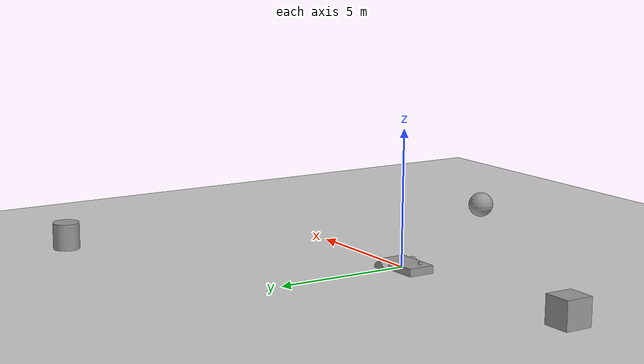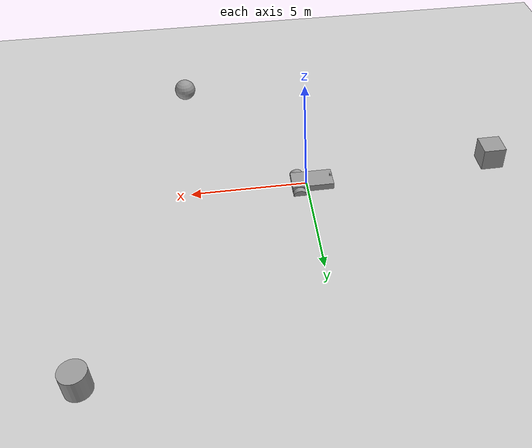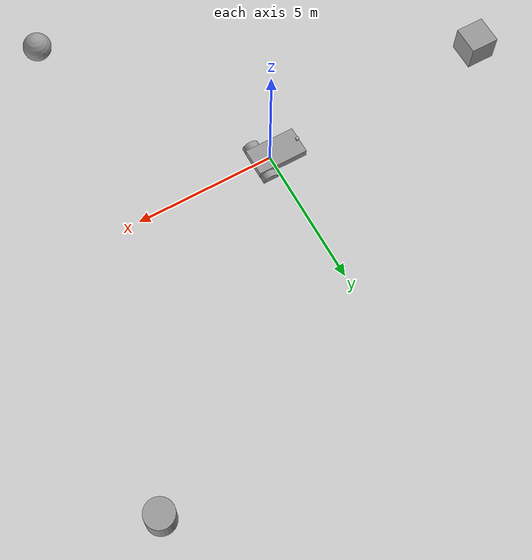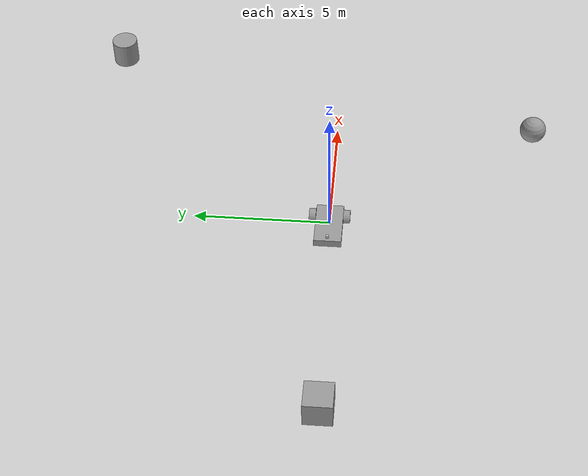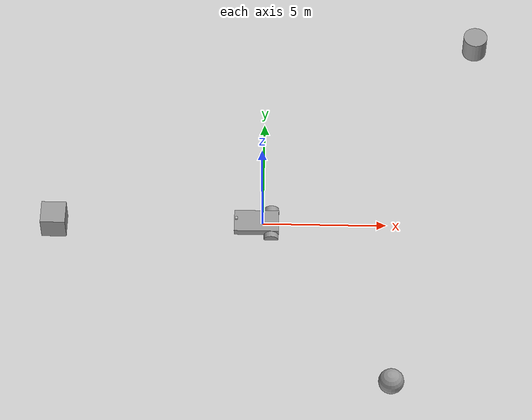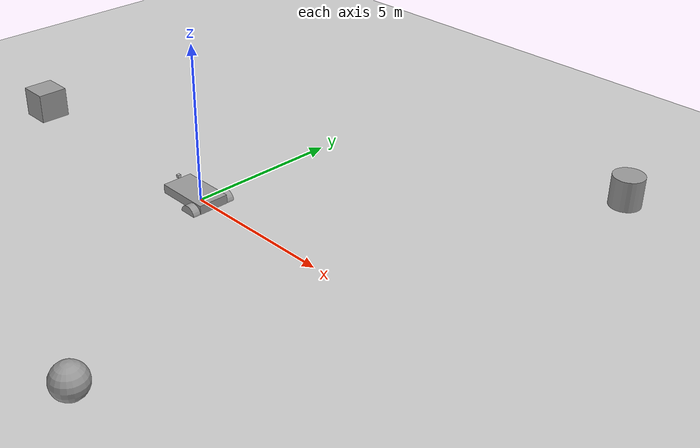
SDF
<?xml version="1.0" ?>
<sdf version="1.5">
  <world name="default">
    <!-- A global light source -->
    <include>
      <uri>model://sun</uri>
    </include>
    <!-- A ground plane -->
    <include>
      <uri>model://ground_plane</uri>
    </include>

    <!-- A testing model that includes the differential_drive_robot model -->
    <model name="differential_drive_robot">
      <include>
        <uri>differential_drive_robot</uri>
      </include>

      <include >
        <uri>panoramic_camera</uri>
      </include>
      <!-- Attach the plugin to this model -->
      <plugin name="differential_drive_control" filename="libtank_plugin.so">
        <velocity>0</velocity>
      </plugin>
    </model>
    <gravity>0 0 -9.8</gravity>
    <magnetic_field>6e-06 2.3e-05 -4.2e-05</magnetic_field>
    <atmosphere type='adiabatic'/>
    <physics name='default_physics' default='0' type='ode'>
      <max_step_size>0.001</max_step_size>
      <real_time_factor>1</real_time_factor>
      <real_time_update_rate>1000</real_time_update_rate>
    </physics>
    <scene>
      <ambient>0.4 0.4 0.4 1</ambient>
      <background>0.7 0.7 0.7 1</background>
      <shadows>1</shadows>
    </scene>
    <wind/>
    <spherical_coordinates>
      <surface_model>EARTH_WGS84</surface_model>
      <latitude_deg>0</latitude_deg>
      <longitude_deg>0</longitude_deg>
      <elevation>0</elevation>
      <heading_deg>0</heading_deg>
    </spherical_coordinates>
    <model name='unit_box'>
      <pose frame=''>-8.43617 -0.234612 0.5 0 -0 0</pose>
      <link name='link'>
        <inertial>
          <mass>1</mass>
          <inertia>
            <ixx>0.166667</ixx>
            <ixy>0</ixy>
            <ixz>0</ixz>
            <iyy>0.166667</iyy>
            <iyz>0</iyz>
            <izz>0.166667</izz>
          </inertia>
          <pose frame=''>0 0 0 0 -0 0</pose>
        </inertial>
        <collision name='collision'>
          <geometry>
            <box>
              <size>1 1 1</size>
            </box>
          </geometry>
          <max_contacts>10</max_contacts>
          <surface>
            <contact>
              <ode/>
            </contact>
            <bounce/>
            <friction>
              <torsional>
                <ode/>
              </torsional>
              <ode/>
            </friction>
          </surface>
        </collision>
        <visual name='visual'>
          <geometry>
            <box>
              <size>1 1 1</size>
            </box>
          </geometry>
          <material>
            <script>
              <name>Gazebo/Grey</name>
              <uri>file://media/materials/scripts/gazebo.material</uri>
            </script>
          </material>
        </visual>
        <self_collide>0</self_collide>
        <enable_wind>0</enable_wind>
        <kinematic>0</kinematic>
      </link>
    </model>
    <model name='unit_cylinder'>
      <pose frame=''>8.86747 9.11965 0.5 0 -0 0</pose>
      <link name='link'>
        <inertial>
          <mass>1</mass>
          <inertia>
            <ixx>0.145833</ixx>
            <ixy>0</ixy>
            <ixz>0</ixz>
            <iyy>0.145833</iyy>
            <iyz>0</iyz>
            <izz>0.125</izz>
          </inertia>
          <pose frame=''>0 0 0 0 -0 0</pose>
        </inertial>
        <collision name='collision'>
          <geometry>
            <cylinder>
              <radius>0.5</radius>
              <length>1</length>
            </cylinder>
          </geometry>
          <max_contacts>10</max_contacts>
          <surface>
            <contact>
              <ode/>
            </contact>
            <bounce/>
            <friction>
              <torsional>
                <ode/>
              </torsional>
              <ode/>
            </friction>
          </surface>
        </collision>
        <visual name='visual'>
          <geometry>
            <cylinder>
              <radius>0.5</radius>
              <length>1</length>
            </cylinder>
          </geometry>
          <material>
            <script>
              <name>Gazebo/Grey</name>
              <uri>file://media/materials/scripts/gazebo.material</uri>
            </script>
          </material>
        </visual>
        <self_collide>0</self_collide>
        <enable_wind>0</enable_wind>
        <kinematic>0</kinematic>
      </link>
    </model>
    <model name='unit_sphere'>
      <pose frame=''>5.10408 -7.61756 0.5 0 -0 0</pose>
      <link name='link'>
        <inertial>
          <mass>1</mass>
          <inertia>
            <ixx>0.1</ixx>
            <ixy>0</ixy>
            <ixz>0</ixz>
            <iyy>0.1</iyy>
            <iyz>0</iyz>
            <izz>0.1</izz>
          </inertia>
          <pose frame=''>0 0 0 0 -0 0</pose>
        </inertial>
        <collision name='collision'>
          <geometry>
            <sphere>
              <radius>0.5</radius>
            </sphere>
          </geometry>
          <max_contacts>10</max_contacts>
          <surface>
            <contact>
              <ode/>
            </contact>
            <bounce/>
            <friction>
              <torsional>
                <ode/>
              </torsional>
              <ode/>
            </friction>
          </surface>
        </collision>
        <visual name='visual'>
          <geometry>
            <sphere>
              <radius>0.5</radius>
            </sphere>
          </geometry>
          <material>
            <script>
              <name>Gazebo/Grey</name>
              <uri>file://media/materials/scripts/gazebo.material</uri>
            </script>
          </material>
        </visual>
        <self_collide>0</self_collide>
        <enable_wind>0</enable_wind>
        <kinematic>0</kinematic>
      </link>
    </model>
  </world>
</sdf>

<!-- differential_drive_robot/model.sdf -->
<sdf version='1.6'>
  <model name='differential_drive_robot'>
    <link name='link_0'>
      <inertial>
        <mass>0.811541</mass>
        <inertia>
          <ixx>0.0813018</ixx>
          <ixy>0</ixy>
          <ixz>0</ixz>
          <iyy>0.233992</iyy>
          <iyz>0</iyz>
          <izz>0.287947</izz>
        </inertia>
        <pose frame=''>0 0 0 0 -0 0</pose>
      </inertial>
      <pose frame=''>-0.252875 -0.007186 0.035183 0 -0 0</pose>
      <gravity>1</gravity>
      <self_collide>0</self_collide>
      <kinematic>0</kinematic>
      <enable_wind>0</enable_wind>
      <visual name='visual'>
        <pose frame=''>0 0 0 0 -0 0</pose>
        <geometry>
          <box>
            <size>1.80493 1 0.44965</size>
          </box>
        </geometry>
        <material>
          <lighting>1</lighting>
          <script>
            <uri>file://media/materials/scripts/gazebo.material</uri>
            <name>Gazebo/Grey</name>
          </script>
          <shader type='pixel'>
            <normal_map>__default__</normal_map>
          </shader>
          <ambient>0.3 0.3 0.3 1</ambient>
          <diffuse>0.7 0.7 0.7 1</diffuse>
          <specular>0.01 0.01 0.01 1</specular>
          <emissive>0 0 0 1</emissive>
        </material>
        <transparency>0</transparency>
        <cast_shadows>1</cast_shadows>
      </visual>
      <collision name='collision'>
        <laser_retro>0</laser_retro>
        <max_contacts>10</max_contacts>
        <pose frame=''>0 0 0 0 -0 0</pose>
        <geometry>
          <box>
            <size>1.80493 1 0.44965</size>
          </box>
        </geometry>
        <surface>
          <friction>
            <ode>
              <mu>1</mu>
              <mu2>1</mu2>
              <fdir1>0 0 0</fdir1>
              <slip1>0</slip1>
              <slip2>0</slip2>
            </ode>
            <torsional>
              <coefficient>1</coefficient>
              <patch_radius>0</patch_radius>
              <surface_radius>0</surface_radius>
              <use_patch_radius>1</use_patch_radius>
              <ode>
                <slip>0</slip>
              </ode>
            </torsional>
          </friction>
          <bounce>
            <restitution_coefficient>0</restitution_coefficient>
            <threshold>1e+06</threshold>
          </bounce>
          <contact>
            <collide_without_contact>0</collide_without_contact>
            <collide_without_contact_bitmask>1</collide_without_contact_bitmask>
            <collide_bitmask>1</collide_bitmask>
            <ode>
              <soft_cfm>0</soft_cfm>
              <soft_erp>0.2</soft_erp>
              <kp>1e+13</kp>
              <kd>1</kd>
              <max_vel>0.01</max_vel>
              <min_depth>0</min_depth>
            </ode>
            <bullet>
              <split_impulse>1</split_impulse>
              <split_impulse_penetration_threshold>-0.01</split_impulse_penetration_threshold>
              <soft_cfm>0</soft_cfm>
              <soft_erp>0.2</soft_erp>
              <kp>1e+13</kp>
              <kd>1</kd>
            </bullet>
          </contact>
        </surface>
      </collision>
    </link>
    <link name='link_1'>
      <inertial>
        <mass>1</mass>
        <inertia>
          <ixx>0.145833</ixx>
          <ixy>0</ixy>
          <ixz>0</ixz>
          <iyy>0.145833</iyy>
          <iyz>0</iyz>
          <izz>0.125</izz>
        </inertia>
        <pose frame=''>0 0 0 0 -0 0</pose>
      </inertial>
      <pose frame=''>0.349591 0.632843 -0.064817 1.5707 -0 0</pose>
      <gravity>1</gravity>
      <self_collide>0</self_collide>
      <kinematic>0</kinematic>
      <enable_wind>0</enable_wind>
      <visual name='visual'>
        <pose frame=''>0 0 0 0 -0 0</pose>
        <geometry>
          <cylinder>
            <radius>0.3</radius>
            <length>0.25</length>
          </cylinder>
        </geometry>
        <material>
          <lighting>1</lighting>
          <script>
            <uri>file://media/materials/scripts/gazebo.material</uri>
            <name>Gazebo/Grey</name>
          </script>
          <shader type='pixel'>
            <normal_map>__default__</normal_map>
          </shader>
          <ambient>0.3 0.3 0.3 1</ambient>
          <diffuse>0.7 0.7 0.7 1</diffuse>
          <specular>0.01 0.01 0.01 1</specular>
          <emissive>0 0 0 1</emissive>
        </material>
        <transparency>0</transparency>
        <cast_shadows>1</cast_shadows>
      </visual>
      <collision name='collision'>
        <laser_retro>0</laser_retro>
        <max_contacts>10</max_contacts>
        <pose frame=''>0 0 0 0 -0 0</pose>
        <geometry>
          <cylinder>
            <radius>0.3</radius>
            <length>0.25</length>
          </cylinder>
        </geometry>
        <surface>
          <friction>
            <ode>
              <mu>1</mu>
              <mu2>1</mu2>
              <fdir1>0 0 0</fdir1>
              <slip1>0</slip1>
              <slip2>0</slip2>
            </ode>
            <torsional>
              <coefficient>1</coefficient>
              <patch_radius>0</patch_radius>
              <surface_radius>0</surface_radius>
              <use_patch_radius>1</use_patch_radius>
              <ode>
                <slip>0</slip>
              </ode>
            </torsional>
          </friction>
          <bounce>
            <restitution_coefficient>0</restitution_coefficient>
            <threshold>1e+06</threshold>
          </bounce>
          <contact>
            <collide_without_contact>0</collide_without_contact>
            <collide_without_contact_bitmask>1</collide_without_contact_bitmask>
            <collide_bitmask>1</collide_bitmask>
            <ode>
              <soft_cfm>0</soft_cfm>
              <soft_erp>0.2</soft_erp>
              <kp>1e+13</kp>
              <kd>1</kd>
              <max_vel>0.01</max_vel>
              <min_depth>0</min_depth>
            </ode>
            <bullet>
              <split_impulse>1</split_impulse>
              <split_impulse_penetration_threshold>-0.01</split_impulse_penetration_threshold>
              <soft_cfm>0</soft_cfm>
              <soft_erp>0.2</soft_erp>
              <kp>1e+13</kp>
              <kd>1</kd>
            </bullet>
          </contact>
        </surface>
      </collision>
    </link>
    <link name='link_1_clone'>
      <inertial>
        <mass>1</mass>
        <inertia>
          <ixx>0.145833</ixx>
          <ixy>0</ixy>
          <ixz>0</ixz>
          <iyy>0.145833</iyy>
          <iyz>0</iyz>
          <izz>0.125</izz>
        </inertia>
        <pose frame=''>0 0 0 0 -0 0</pose>
      </inertial>
      <pose frame=''>0.349591 -0.632215 -0.064817 1.5707 -0 0</pose>
      <gravity>1</gravity>
      <self_collide>0</self_collide>
      <kinematic>0</kinematic>
      <enable_wind>0</enable_wind>
      <visual name='visual'>
        <pose frame=''>0 0 0 0 -0 0</pose>
        <geometry>
          <cylinder>
            <radius>0.3</radius>
            <length>0.25</length>
          </cylinder>
        </geometry>
        <material>
          <lighting>1</lighting>
          <script>
            <uri>file://media/materials/scripts/gazebo.material</uri>
            <name>Gazebo/Grey</name>
          </script>
          <shader type='pixel'>
            <normal_map>__default__</normal_map>
          </shader>
          <ambient>0.3 0.3 0.3 1</ambient>
          <diffuse>0.7 0.7 0.7 1</diffuse>
          <specular>0.01 0.01 0.01 1</specular>
          <emissive>0 0 0 1</emissive>
        </material>
        <transparency>0</transparency>
        <cast_shadows>1</cast_shadows>
      </visual>
      <collision name='collision'>
        <laser_retro>0</laser_retro>
        <max_contacts>10</max_contacts>
        <pose frame=''>0 0 0 0 -0 0</pose>
        <geometry>
          <cylinder>
            <radius>0.3</radius>
            <length>0.25</length>
          </cylinder>
        </geometry>
        <surface>
          <friction>
            <ode>
              <mu>1</mu>
              <mu2>1</mu2>
              <fdir1>0 0 0</fdir1>
              <slip1>0</slip1>
              <slip2>0</slip2>
            </ode>
            <torsional>
              <coefficient>1</coefficient>
              <patch_radius>0</patch_radius>
              <surface_radius>0</surface_radius>
              <use_patch_radius>1</use_patch_radius>
              <ode>
                <slip>0</slip>
              </ode>
            </torsional>
          </friction>
          <bounce>
            <restitution_coefficient>0</restitution_coefficient>
            <threshold>1e+06</threshold>
          </bounce>
          <contact>
            <collide_without_contact>0</collide_without_contact>
            <collide_without_contact_bitmask>1</collide_without_contact_bitmask>
            <collide_bitmask>1</collide_bitmask>
            <ode>
              <soft_cfm>0</soft_cfm>
              <soft_erp>0.2</soft_erp>
              <kp>1e+13</kp>
              <kd>1</kd>
              <max_vel>0.01</max_vel>
              <min_depth>0</min_depth>
            </ode>
            <bullet>
              <split_impulse>1</split_impulse>
              <split_impulse_penetration_threshold>-0.01</split_impulse_penetration_threshold>
              <soft_cfm>0</soft_cfm>
              <soft_erp>0.2</soft_erp>
              <kp>1e+13</kp>
              <kd>1</kd>
            </bullet>
          </contact>
        </surface>
      </collision>
    </link>
    <link name='link_2'>
      <inertial>
        <mass>1</mass>
        <inertia>
          <ixx>0.1</ixx>
          <ixy>0</ixy>
          <ixz>0</ixz>
          <iyy>0.1</iyy>
          <iyz>0</iyz>
          <izz>0.1</izz>
        </inertia>
        <pose frame=''>0 0 0 0 -0 0</pose>
      </inertial>
      <pose frame=''>-0.955341 -0.007186 -0.164817 0 -0 0</pose>
      <gravity>1</gravity>
      <self_collide>0</self_collide>
      <kinematic>0</kinematic>
      <enable_wind>0</enable_wind>
      <visual name='visual'>
        <pose frame=''>0 0 0 0 -0 0</pose>
        <geometry>
          <sphere>
            <radius>0.2</radius>
          </sphere>
        </geometry>
        <material>
          <lighting>1</lighting>
          <script>
            <uri>file://media/materials/scripts/gazebo.material</uri>
            <name>Gazebo/Grey</name>
          </script>
          <shader type='pixel'>
            <normal_map>__default__</normal_map>
          </shader>
          <ambient>0.3 0.3 0.3 1</ambient>
          <diffuse>0.7 0.7 0.7 1</diffuse>
          <specular>0.01 0.01 0.01 1</specular>
          <emissive>0 0 0 1</emissive>
        </material>
        <transparency>0</transparency>
        <cast_shadows>1</cast_shadows>
      </visual>
      <collision name='collision'>
        <laser_retro>0</laser_retro>
        <max_contacts>10</max_contacts>
        <pose frame=''>0 0 0 0 -0 0</pose>
        <geometry>
          <sphere>
            <radius>0.2</radius>
          </sphere>
        </geometry>
        <surface>
          <friction>
            <ode>
              <mu>1</mu>
              <mu2>1</mu2>
              <fdir1>0 0 0</fdir1>
              <slip1>0</slip1>
              <slip2>0</slip2>
            </ode>
            <torsional>
              <coefficient>1</coefficient>
              <patch_radius>0</patch_radius>
              <surface_radius>0</surface_radius>
              <use_patch_radius>1</use_patch_radius>
              <ode>
                <slip>0</slip>
              </ode>
            </torsional>
          </friction>
          <bounce>
            <restitution_coefficient>0</restitution_coefficient>
            <threshold>1e+06</threshold>
          </bounce>
          <contact>
            <collide_without_contact>0</collide_without_contact>
            <collide_without_contact_bitmask>1</collide_without_contact_bitmask>
            <collide_bitmask>1</collide_bitmask>
            <ode>
              <soft_cfm>0</soft_cfm>
              <soft_erp>0.2</soft_erp>
              <kp>1e+13</kp>
              <kd>1</kd>
              <max_vel>0.01</max_vel>
              <min_depth>0</min_depth>
            </ode>
            <bullet>
              <split_impulse>1</split_impulse>
              <split_impulse_penetration_threshold>-0.01</split_impulse_penetration_threshold>
              <soft_cfm>0</soft_cfm>
              <soft_erp>0.2</soft_erp>
              <kp>1e+13</kp>
              <kd>1</kd>
            </bullet>
          </contact>
        </surface>
      </collision>
    </link>

    <joint name='link_0_JOINT_0' type='revolute'>
      <parent>link_0</parent>
      <child>link_1</child>
      <pose frame=''>0 0 0 0 -0 0</pose>
      <axis>
        <xyz>0 0 1</xyz>
        <use_parent_model_frame>0</use_parent_model_frame>
        <limit>
          <lower>-1.79769e+308</lower>
          <upper>1.79769e+308</upper>
          <effort>-1</effort>
          <velocity>-1</velocity>
        </limit>
        <dynamics>
          <spring_reference>0</spring_reference>
          <spring_stiffness>0</spring_stiffness>
          <damping>0</damping>
          <friction>0</friction>
        </dynamics>
      </axis>
      <physics>
        <ode>
          <limit>
            <cfm>0</cfm>
            <erp>0.2</erp>
          </limit>
          <suspension>
            <cfm>0</cfm>
            <erp>0.2</erp>
          </suspension>
        </ode>
      </physics>
    </joint>
    <joint name='link_0_JOINT_1' type='revolute'>
      <parent>link_0</parent>
      <child>link_1_clone</child>
      <pose frame=''>0 0 0 0 -0 0</pose>
      <axis>
        <xyz>0 0 -1</xyz>
        <use_parent_model_frame>0</use_parent_model_frame>
        <limit>
          <lower>-1.79769e+308</lower>
          <upper>1.79769e+308</upper>
          <effort>-1</effort>
          <velocity>-1</velocity>
        </limit>
        <dynamics>
          <spring_reference>0</spring_reference>
          <spring_stiffness>0</spring_stiffness>
          <damping>0</damping>
          <friction>0</friction>
        </dynamics>
      </axis>
      <physics>
        <ode>
          <limit>
            <cfm>0</cfm>
            <erp>0.2</erp>
          </limit>
          <suspension>
            <cfm>0</cfm>
            <erp>0.2</erp>
          </suspension>
        </ode>
      </physics>
    </joint>
    <joint name='link_0_JOINT_2' type='ball'>
      <parent>link_0</parent>
      <child>link_2</child>
      <pose frame=''>0 0 0 0 -0 0</pose>
      <physics>
        <ode>
          <limit>
            <cfm>0</cfm>
            <erp>0.2</erp>
          </limit>
          <suspension>
            <cfm>0</cfm>
            <erp>0.2</erp>
          </suspension>
        </ode>
      </physics>
    </joint>
    <static>0</static>
    <allow_auto_disable>1</allow_auto_disable>
  </model>
</sdf>

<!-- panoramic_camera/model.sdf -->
<sdf version='1.6'>
  <model name="panoramic_camera">
     <pose frame=''>-1.07303 0 0.4 0 -1.5707 0</pose>
    <link name="link">
      <inertial>
        <mass>0.1</mass>
        <pose frame=''>0 0 0 0 -0 0</pose>
        <inertia>
          <ixx>0.0001</ixx>
          <ixy>0</ixy>
          <ixz>0</ixz>
          <iyy>0.0001</iyy>
          <iyz>0</iyz>
          <izz>0.0001</izz>
        </inertia>
      </inertial>
      <collision name="collision">
        <geometry>
          <box>
            <size>0.1 0.1 0.1</size>
          </box>
        </geometry>
      </collision>
      <visual name="visual">
        <geometry>
          <box>
            <size>0.1 0.1 0.1</size>
          </box>
        </geometry>
      </visual>
      <sensor name="camera" type="wideanglecamera">
        <camera>
          <horizontal_fov>6.2831</horizontal_fov>
          <image>
            <width>640</width>
            <height>640</height>
            <format>B8G8R8</format>
          </image>
          <clip>
            <near>0.1</near>
            <far>100</far>
          </clip>
          <lens>
            <type>custom</type>
            <scale_to_hfov>false</scale_to_hfov>
            <cutoff_angle>6.2831</cutoff_angle>
            <env_texture_size>512</env_texture_size>
            <custom_function>
            <c1>1.05</c1>
            <c2>4</c2>
            <f>2</f>
            <fun>tan</fun>
          </custom_function>
          </lens>
        </camera>
        <always_on>1</always_on>
        <update_rate>30</update_rate>
      </sensor>
    </link>
    <joint name='link_0_JOINT_0_0' type='fixed'>
      <parent>differential_drive_robot::link_0</parent>
      <child>panoramic_camera::link</child>
      <pose frame=''>0 0 0 0 -0 0</pose>
      <physics>
        <ode>
          <limit>
            <cfm>0</cfm>
            <erp>0.2</erp>
          </limit>
          <suspension>
            <cfm>0</cfm>
            <erp>0.2</erp>
          </suspension>
        </ode>
      </physics>
    </joint>
  </model>

</sdf>
